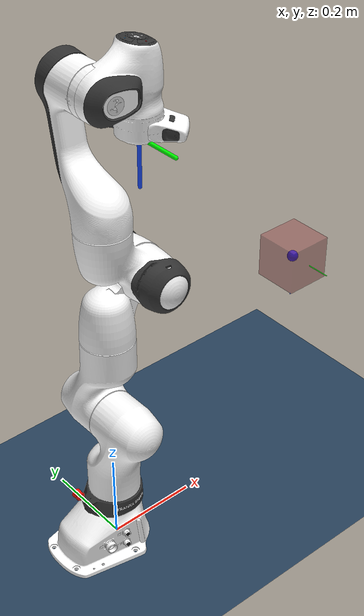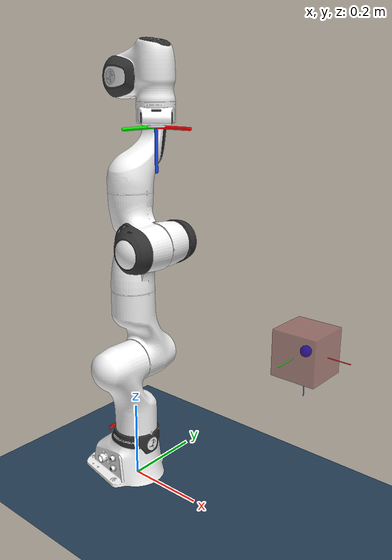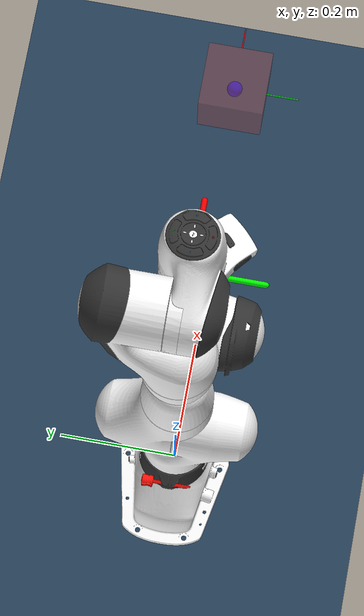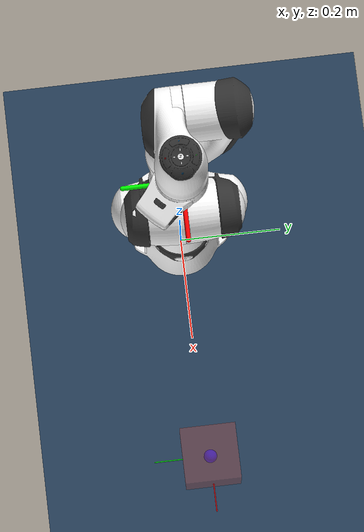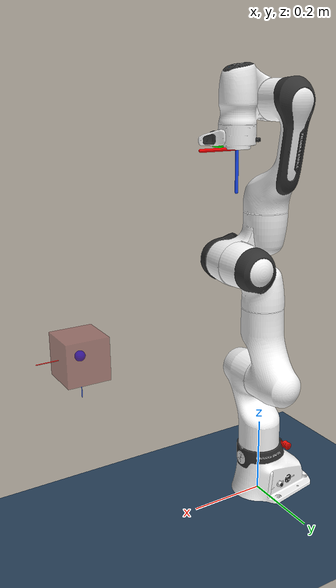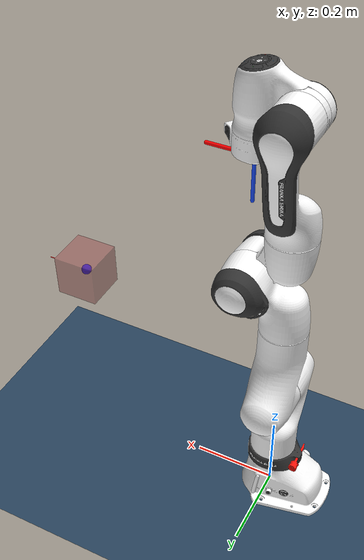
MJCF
<mujoco model="fr3 scene with target and axes">
  <!-- This scene is meant to sit inside the franka_fr3/ folder. -->
  <include file="fr3_with_ee_axes.xml"/>

  <statistic center="0.2 0 0.4" extent=".8"/>

  <visual>
    <headlight diffuse="0.6 0.6 0.6" ambient="0.3 0.3 0.3" specular="0 0 0"/>
    <rgba haze="0.15 0.25 0.35 1"/>
    <global azimuth="120" elevation="-20"/>
  </visual>

  <asset>
    <texture type="skybox" builtin="gradient" rgb1="0.3 0.5 0.7" rgb2="0 0 0" width="512" height="3072"/>
    <texture type="2d" name="groundplane" builtin="checker" mark="edge" rgb1="0.2 0.3 0.4" rgb2="0.1 0.2 0.3"
      markrgb="0.8 0.8 0.8" width="300" height="300"/>
    <material name="groundplane" texture="groundplane" texuniform="true" texrepeat="5 5" reflectance="0.2"/>
  </asset>

  <worldbody>
    <light pos="0 0 1.5" dir="0 0 -1" directional="true"/>
    <geom name="floor" size="0 0 0.05" type="plane" material="groundplane"/>

    <!-- Mouse-draggable Cartesian target used by diffik_nullspace_fr3.py. -->
    <body name="target" pos="0.5 0 .5" quat="0 1 0 0" mocap="true">
      <geom type="box" size=".05 .05 .05" contype="0" conaffinity="0" rgba=".6 .3 .3 .5"/>
      <site name="target_site" type="sphere" size="0.012" rgba="0 0 1 1" group="1"/>

      <!-- Target coordinate axes, for comparing desired vs current end-effector orientation. -->
      <geom name="target_axis_x" type="capsule" fromto="0 0 0 0.10 0 0" size="0.001" rgba="1 0 0 0.8"
            contype="0" conaffinity="0" group="1"/>
      <geom name="target_axis_y" type="capsule" fromto="0 0 0 0 0.10 0" size="0.001" rgba="0 1 0 0.8"
            contype="0" conaffinity="0" group="1"/>
      <geom name="target_axis_z" type="capsule" fromto="0 0 0 0 0 0.10" size="0.001" rgba="0.1 0.3 1 0.8"
            contype="0" conaffinity="0" group="1"/>
    </body>
  </worldbody>
</mujoco>

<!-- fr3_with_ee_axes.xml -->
<mujoco model="fr3">
  <compiler angle="radian" meshdir="assets"/>

  <option integrator="implicitfast"/>

  <default>
    <default class="fr3">
      <!-- Overwritten in joints 5, 6, and 7. -->
      <joint damping="0.21" armature="0.195" frictionloss="1.137"/>
      <position inheritrange="1"/>
      <default class="visual">
        <geom type="mesh" group="2" contype="0" conaffinity="0"/>
      </default>
      <default class="collision">
        <geom type="mesh" group="3" mass="0" density="0"/>
      </default>
      <site size="0.001" rgba="0.5 0.5 0.5 0.3" group="4"/>
    </default>
  </default>

  <asset>
    <material name="black" rgba=".2 .2 .2 1"/>
    <material name="white" rgba="1 1 1 1"/>
    <material name="red" rgba="1 0.072272 0.039546 1"/>
    <material name="gray" rgba="0.863156 0.863156 0.863157 1"/>
    <material name="button_green" rgba="0.102241 0.571125 0.102242 1"/>
    <material name="button_red" rgba="0.520996 0.008023 0.013702 1"/>
    <material name="button_blue" rgba="0.024157 0.445201 0.737911 1"/>

    <mesh file="link0_0.obj"/>
    <mesh file="link0_1.obj"/>
    <mesh file="link0_2.obj"/>
    <mesh file="link0_3.obj"/>
    <mesh file="link0_4.obj"/>
    <mesh file="link0_5.obj"/>
    <mesh file="link0_6.obj"/>
    <mesh file="link1.obj"/>
    <mesh file="link2.obj"/>
    <mesh file="link3_0.obj"/>
    <mesh file="link3_1.obj"/>
    <mesh file="link4_0.obj"/>
    <mesh file="link4_1.obj"/>
    <mesh file="link5_0.obj"/>
    <mesh file="link5_1.obj"/>
    <mesh file="link5_2.obj"/>
    <mesh file="link6_0.obj"/>
    <mesh file="link6_1.obj"/>
    <mesh file="link6_2.obj"/>
    <mesh file="link6_3.obj"/>
    <mesh file="link6_4.obj"/>
    <mesh file="link6_5.obj"/>
    <mesh file="link6_6.obj"/>
    <mesh file="link6_7.obj"/>
    <mesh file="link7_0.obj"/>
    <mesh file="link7_1.obj"/>
    <mesh file="link7_2.obj"/>
    <mesh file="link7_3.obj"/>

    <mesh name="link0_coll" file="link0.stl"/>
    <mesh name="link1_coll" file="link1.stl"/>
    <mesh name="link2_coll" file="link2.stl"/>
    <mesh name="link3_coll" file="link3.stl"/>
    <mesh name="link4_coll" file="link4.stl"/>
    <mesh name="link5_coll" file="link5.stl"/>
    <mesh name="link6_coll" file="link6.stl"/>
    <mesh name="link7_coll" file="link7.stl"/>
  </asset>

  <worldbody>
    <body name="base" childclass="fr3">
      <body name="fr3_link0">
        <geom mesh="link0_0" material="black" class="visual"/>
        <geom mesh="link0_1" material="white" class="visual"/>
        <geom mesh="link0_2" material="white" class="visual"/>
        <geom mesh="link0_3" material="white" class="visual"/>
        <geom mesh="link0_4" material="white" class="visual"/>
        <geom mesh="link0_5" material="red" class="visual"/>
        <geom mesh="link0_6" material="black" class="visual"/>
        <geom name="fr3_link0_collision" mesh="link0_coll" class="collision"/>
        <body name="fr3_link1" pos="0 0 0.333">
          <inertial pos="4.128e-07 -0.0181251 -0.0386036" quat="0.998098 -0.0605364 0.00380499 0.0110109" mass="2.92747"
            diaginertia="0.0239286 0.0227246 0.00610634"/>
          <joint name="fr3_joint1" axis="0 0 1" range="-2.7437 2.7437" actuatorfrcrange="-87 87"/>
          <geom name="fr3_link1_collision" class="collision" mesh="link1_coll"/>
          <geom material="white" mesh="link1" class="visual"/>
          <body name="fr3_link2" quat="1 -1 0 0">
            <inertial pos="0.00318289 -0.0743222 0.00881461" quat="0.502599 0.584437 -0.465998 0.434366" mass="2.93554"
              diaginertia="0.0629567 0.0411924 0.0246371"/>
            <joint name="fr3_joint2" axis="0 0 1" range="-1.7837 1.7837" actuatorfrcrange="-87 87"/>
            <geom material="white" mesh="link2" class="visual"/>
            <geom name="fr3_link2_collision" class="collision" mesh="link2_coll"/>
            <body name="fr3_link3" pos="0 -0.316 0" quat="1 1 0 0">
              <inertial pos="0.0407016 -0.00482006 -0.0289731" quat="0.921025 -0.244161 0.155272 0.260745" mass="2.2449"
                diaginertia="0.0267409 0.0189869 0.0171587"/>
              <joint name="fr3_joint3" axis="0 0 1" range="-2.9007 2.9007" actuatorfrcrange="-87 87"/>
              <geom mesh="link3_0" material="white" class="visual"/>
              <geom mesh="link3_1" material="black" class="visual"/>
              <geom name="fr3_link3_collision" class="collision" mesh="link3_coll"/>
              <body name="fr3_link4" pos="0.0825 0 0" quat="1 1 0 0">
                <inertial pos="-0.0459101 0.0630493 -0.00851879" quat="0.438018 0.803311 0.00937812 0.403414"
                  mass="2.6156" diaginertia="0.05139 0.0372717 0.0160047"/>
                <joint name="fr3_joint4" axis="0 0 1" range="-3.0421 -0.1518" actuatorfrcrange="-87 87"/>
                <geom mesh="link4_0" material="white" class="visual"/>
                <geom mesh="link4_1" material="black" class="visual"/>
                <geom name="fr3_link4_collision" class="collision" mesh="link4_coll"/>
                <body name="fr3_link5" pos="-0.0825 0.384 0" quat="1 -1 0 0">
                  <inertial pos="-0.00160396 0.0292536 -0.0972966" quat="0.919031 0.125604 0.0751531 -0.366003"
                    mass="2.32712" diaginertia="0.0579335 0.0449144 0.0130634"/>
                  <joint name="fr3_joint5" axis="0 0 1" range="-2.8065 2.8065" actuatorfrcrange="-12 12"
                    armature="0.074" frictionloss="0.763"/>
                  <geom mesh="link5_0" material="white" class="visual"/>
                  <geom mesh="link5_1" material="white" class="visual"/>
                  <geom mesh="link5_2" material="black" class="visual"/>
                  <geom name="fr3_link5_collision" class="collision" mesh="link5_coll"/>
                  <body name="fr3_link6" quat="1 1 0 0">
                    <inertial pos="0.0597131 -0.0410295 -0.0101693" quat="0.621301 0.552665 0.510011 0.220081"
                      mass="1.81704" diaginertia="0.0175039 0.0161123 0.00193529"/>
                    <joint name="fr3_joint6" axis="0 0 1" range="0.5445 4.5169" actuatorfrcrange="-12 12"
                      armature="0.074" frictionloss="0.44"/>
                    <geom mesh="link6_0" material="button_green" class="visual"/>
                    <geom mesh="link6_1" material="white" class="visual"/>
                    <geom mesh="link6_2" material="white" class="visual"/>
                    <geom mesh="link6_3" material="gray" class="visual"/>
                    <geom mesh="link6_4" material="button_red" class="visual"/>
                    <geom mesh="link6_5" material="white" class="visual"/>
                    <geom mesh="link6_6" material="black" class="visual"/>
                    <geom mesh="link6_7" material="button_blue" class="visual"/>
                    <geom name="fr3_link6_collision" class="collision" mesh="link6_coll"/>
                    <body name="fr3_link7" pos="0.088 0 0" quat="1 1 0 0">
                      <inertial pos="0.00452258 0.00862619 -0.0161633" quat="0.727579 0.0978688 -0.24906 0.63168"
                        mass="0.627143" diaginertia="0.000223836 0.000223642 5.64132e-07"/>
                      <joint name="fr3_joint7" axis="0 0 1" range="-3.0159 3.0159" actuatorfrcrange="-12 12"
                        armature="0.074" frictionloss="0.248"/>
                      <geom mesh="link7_0" material="black" class="visual"/>
                      <geom mesh="link7_1" material="white" class="visual"/>
                      <geom mesh="link7_2" material="white" class="visual"/>
                      <geom mesh="link7_3" material="black" class="visual"/>
                      <geom name="fr3_link7_collision" class="collision" mesh="link7_coll"/>
                      <!-- End-effector control site.  The sphere makes the controlled point visible. -->
                      <site name="attachment_site" pos="0 0 0.107" type="sphere" size="0.012" rgba="1 1 0 1"/>

                      <!-- Visual end-effector coordinate axes attached to fr3_link7.
                           Red = +X, Green = +Y, Blue = +Z, all expressed in the attachment_site frame. -->
                      <geom name="ee_axis_x" type="capsule" fromto="0 0 0.107 0.10 0 0.107" size="0.004" rgba="1 0 0 1"
                            contype="0" conaffinity="0" group="1"/>
                      <geom name="ee_axis_y" type="capsule" fromto="0 0 0.107 0 0.10 0.107" size="0.004" rgba="0 1 0 1"
                            contype="0" conaffinity="0" group="1"/>
                      <geom name="ee_axis_z" type="capsule" fromto="0 0 0.107 0 0 0.207" size="0.004" rgba="0.1 0.3 1 1"
                            contype="0" conaffinity="0" group="1"/>
                    </body>
                  </body>
                </body>
              </body>
            </body>
          </body>
        </body>
      </body>
    </body>
  </worldbody>

  <actuator>
    <position class="fr3" name="fr3_joint1" joint="fr3_joint1" kp="4500" kv="450"/>
    <position class="fr3" name="fr3_joint2" joint="fr3_joint2" kp="4500" kv="450"/>
    <position class="fr3" name="fr3_joint3" joint="fr3_joint3" kp="3500" kv="350"/>
    <position class="fr3" name="fr3_joint4" joint="fr3_joint4" kp="3500" kv="350"/>
    <position class="fr3" name="fr3_joint5" joint="fr3_joint5" kp="2000" kv="200"/>
    <position class="fr3" name="fr3_joint6" joint="fr3_joint6" kp="2000" kv="200"/>
    <position class="fr3" name="fr3_joint7" joint="fr3_joint7" kp="2000" kv="200"/>
  </actuator>

  <contact>
    <exclude body1="fr3_link0" body2="fr3_link1"/>
  </contact>

  <keyframe>
    <key name="home" qpos="0 0 0 -1.57079 0 1.57079 -0.7853" ctrl="0 0 0 -1.57079 0 1.57079 -0.7853"/>
  </keyframe>
</mujoco>
